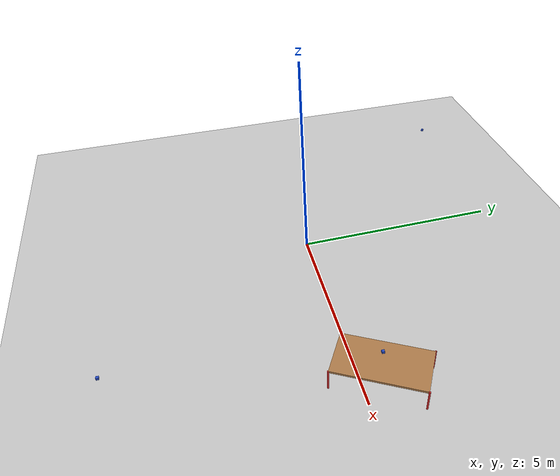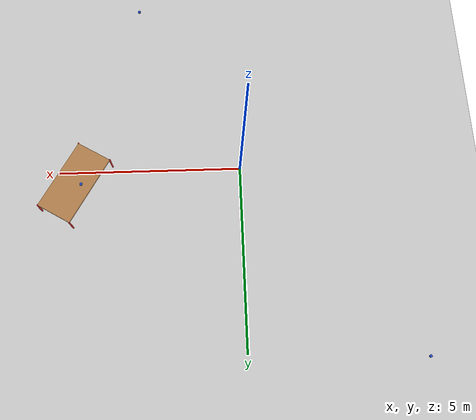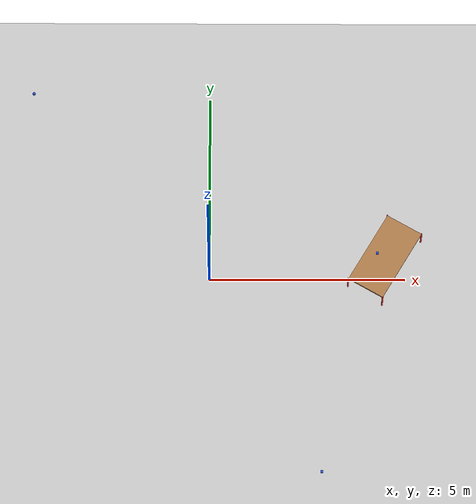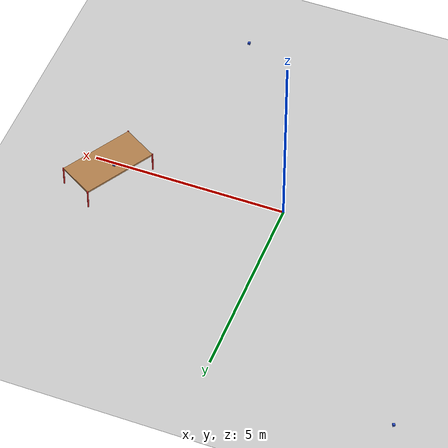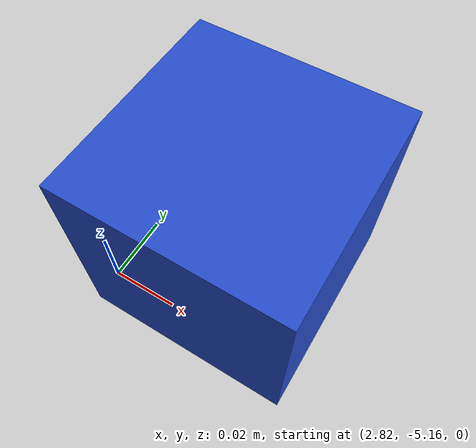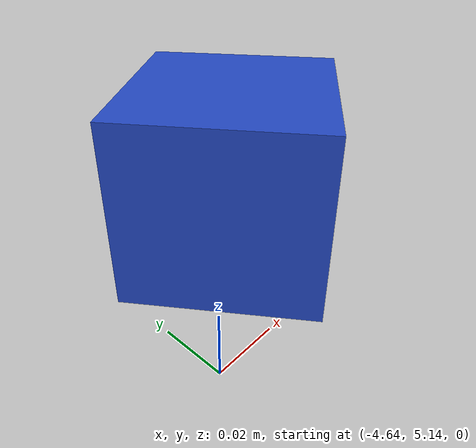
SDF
<sdf version="1.4">
 <world name="default">
  <model name="ground_plane">
   <static>1</static>
   <link name="link">
    <collision name="collision">
     <geometry><plane><normal>0 0 1</normal><size>100 100</size></plane></geometry>
     <surface><friction><ode><mu>100</mu><mu2>50</mu2></ode></friction></surface>
    </collision>
    <visual name="visual">
     <cast_shadows>0</cast_shadows>
     <geometry><plane><normal>0 0 1</normal><size>100 100</size></plane></geometry>
     <material>
      <script><uri>file://media/materials/scripts/gazebo.material</uri><name>Gazebo/Grey</name></script>
     </material>
    </visual>
    <velocity_decay><linear>0</linear><angular>0</angular></velocity_decay>
   </link>
  </model>
  <light name="sun" type="directional">
   <pose>0 0 10 0 -0 0</pose>
   <diffuse>0.8 0.8 0.8 1</diffuse>
   <specular>0.2 0.2 0.2 1</specular>
   <attenuation>
    <range>1000</range>
    <constant>0.9</constant>
    <linear>0.01</linear>
    <quadratic>0.001</quadratic>
   </attenuation>
   <direction>-0.5 0.1 -0.9</direction>
  </light>
  <model name="table1">
   <link name="table_top_link">
    <inertial>
     <pose>0 0 0.325 0 -0 0</pose>
     <mass>5</mass>
     <inertia><ixx>5.45</ixx><ixy>0</ixy><ixz>0</ixz><iyy>2.45</iyy><iyz>0</iyz><izz>6.04</izz></inertia>
    </inertial>
    <collision name="table_top_link_collision">
     <pose>0 0 0.525 0 -0 0</pose>
     <geometry><box><size>1 2 0.05</size></box></geometry>
     <surface>
      <contact><ode><kp>1e+06</kp><kd>1</kd></ode></contact>
      <friction><ode><mu>50</mu><mu2>50</mu2></ode></friction>
     </surface>
    </collision>
    <collision name="table_top_link_collision_leg1_link">
     <pose>0.5 1 0.275 0 -0 0</pose>
     <geometry><cylinder><length>0.55</length><radius>0.02</radius></cylinder></geometry>
     <surface>
      <contact><ode><kp>1e+06</kp><kd>1</kd></ode></contact>
      <friction><ode><mu>50</mu><mu2>50</mu2></ode></friction>
     </surface>
     <surface>
      <contact><ode><kp>1e+07</kp><kd>1</kd></ode></contact>
      <friction><ode><mu>1000</mu><mu2>1000</mu2></ode></friction>
     </surface>
    </collision>
    <collision name="table_top_link_collision_leg2_link">
     <pose>-0.5 1 0.275 0 -0 0</pose>
     <geometry><cylinder><length>0.55</length><radius>0.02</radius></cylinder></geometry>
     <surface>
      <contact><ode><kp>1e+06</kp><kd>1</kd></ode></contact>
      <friction><ode><mu>50</mu><mu2>50</mu2></ode></friction>
     </surface>
     <surface>
      <contact><ode><kp>1e+07</kp><kd>1</kd></ode></contact>
      <friction><ode><mu>1000</mu><mu2>1000</mu2></ode></friction>
     </surface>
    </collision>
    <collision name="table_top_link_collision_leg3_link">
     <pose>0.5 -1 0.275 0 -0 0</pose>
     <geometry><cylinder><length>0.55</length><radius>0.02</radius></cylinder></geometry>
     <surface>
      <contact><ode><kp>1e+06</kp><kd>1</kd></ode></contact>
      <friction><ode><mu>50</mu><mu2>50</mu2></ode></friction>
     </surface>
     <surface>
      <contact><ode><kp>1e+07</kp><kd>1</kd></ode></contact>
      <friction><ode><mu>1000</mu><mu2>1000</mu2></ode></friction>
     </surface>
    </collision>
    <collision name="table_top_link_collision_leg4_link">
     <pose>-0.5 -1 0.275 0 -0 0</pose>
     <geometry><cylinder><length>0.55</length><radius>0.02</radius></cylinder></geometry>
     <surface>
      <contact><ode><kp>1e+06</kp><kd>1</kd></ode></contact>
      <friction><ode><mu>50</mu><mu2>50</mu2></ode></friction>
     </surface>
     <surface>
      <contact><ode><kp>1e+07</kp><kd>1</kd></ode></contact>
      <friction><ode><mu>1000</mu><mu2>1000</mu2></ode></friction>
     </surface>
    </collision>
    <visual name="table_top_link_visual">
     <pose>0 0 0.525 0 -0 0</pose>
     <geometry><box><size>1 2 0.05</size></box></geometry>
     <material><script><name>Gazebo/Wood</name><uri>__default__</uri></script></material>
    </visual>
    <visual name="table_top_link_visual_leg1_link">
     <pose>0.5 1 0.275 0 -0 0</pose>
     <geometry><cylinder><length>0.55</length><radius>0.02</radius></cylinder></geometry>
     <material><script><name>Gazebo/Red</name><uri>__default__</uri></script></material>
    </visual>
    <visual name="table_top_link_visual_leg2_link">
     <pose>-0.5 1 0.275 0 -0 0</pose>
     <geometry><cylinder><length>0.55</length><radius>0.02</radius></cylinder></geometry>
     <material><script><name>Gazebo/Red</name><uri>__default__</uri></script></material>
    </visual>
    <visual name="table_top_link_visual_leg3_link">
     <pose>0.5 -1 0.275 0 -0 0</pose>
     <geometry><cylinder><length>0.55</length><radius>0.02</radius></cylinder></geometry>
     <material><script><name>Gazebo/Red</name><uri>__default__</uri></script></material>
    </visual>
    <visual name="table_top_link_visual_leg4_link">
     <pose>-0.5 -1 0.275 0 -0 0</pose>
     <geometry><cylinder><length>0.55</length><radius>0.02</radius></cylinder></geometry>
     <material><script><name>Gazebo/Red</name><uri>__default__</uri></script></material>
    </visual>
    <velocity_decay><linear>0</linear><angular>0</angular></velocity_decay>
    <velocity_decay><linear>0</linear><angular>0</angular></velocity_decay>
    <velocity_decay><linear>0</linear><angular>0</angular></velocity_decay>
    <velocity_decay><linear>0</linear><angular>0</angular></velocity_decay>
    <velocity_decay><linear>0</linear><angular>0</angular></velocity_decay>
    <self_collide>1</self_collide>
   </link>
   <static>1</static>
   <pose>4.47268 0.450644 0 0 0 -0.530326</pose>
  </model>
  <model name="demo_cube">
   <static>0</static>
   <link name="link">
    <inertial>
     <mass>0.25</mass>
     <inertia><ixx>0.001</ixx><ixy>0</ixy><ixz>0</ixz><iyy>0.001</iyy><iyz>0</iyz><izz>0.001</izz></inertia>
    </inertial>
    <collision name="collision">
     <geometry><box><size>0.06 0.06 0.06</size></box></geometry>
     <surface>
      <friction><ode><mu>30</mu><mu2>30</mu2></ode></friction>
      <contact><ode><kp>1e+06</kp><kd>100</kd><max_vel>1</max_vel><min_depth>0.002</min_depth></ode></contact>
     </surface>
    </collision>
    <visual name="visual">
     <geometry><box><size>0.06 0.06 0.06</size></box></geometry>
     <material>
      <script><uri>file://media/materials/scripts/gazebo.material</uri><name>Gazebo/Blue</name></script>
     </material>
    </visual>
    <velocity_decay><linear>0</linear><angular>0</angular></velocity_decay>
   </link>
   <pose>-4.60048 5.17253 0.027999 3.14159 -0 -0.955861</pose>
  </model>
  <physics type="ode">
   <max_step_size>0.001</max_step_size>
   <real_time_factor>1</real_time_factor>
   <real_time_update_rate>1000</real_time_update_rate>
   <gravity>0 0 -9.8</gravity>
  </physics>
  <scene><ambient>0.4 0.4 0.4 1</ambient><background>0.7 0.7 0.7 1</background><shadows>1</shadows></scene>
  <spherical_coordinates>
   <surface_model>EARTH_WGS84</surface_model>
   <latitude_deg>0</latitude_deg>
   <longitude_deg>0</longitude_deg>
   <elevation>0</elevation>
   <heading_deg>0</heading_deg>
  </spherical_coordinates>
  <model name="demo_cube_0">
   <static>0</static>
   <link name="link">
    <inertial>
     <mass>0.25</mass>
     <inertia><ixx>0.001</ixx><ixy>0</ixy><ixz>0</ixz><iyy>0.001</iyy><iyz>0</iyz><izz>0.001</izz></inertia>
    </inertial>
    <collision name="collision">
     <geometry><box><size>0.06 0.06 0.06</size></box></geometry>
     <surface>
      <friction><ode><mu>30</mu><mu2>30</mu2></ode></friction>
      <contact><ode><kp>1e+06</kp><kd>100</kd><max_vel>1</max_vel><min_depth>0.002</min_depth></ode></contact>
     </surface>
    </collision>
    <visual name="visual">
     <geometry><box><size>0.06 0.06 0.06</size></box></geometry>
     <material>
      <script><uri>file://media/materials/scripts/gazebo.material</uri><name>Gazebo/Blue</name></script>
     </material>
    </visual>
    <velocity_decay><linear>0</linear><angular>0</angular></velocity_decay>
   </link>
   <pose>2.85016 -5.13888 0.027999 0 -0 0</pose>
  </model>
  <model name="demo_cube_1">
   <static>0</static>
   <link name="link">
    <inertial>
     <mass>0.25</mass>
     <inertia><ixx>0.001</ixx><ixy>0</ixy><ixz>0</ixz><iyy>0.001</iyy><iyz>0</iyz><izz>0.001</izz></inertia>
    </inertial>
    <collision name="collision">
     <geometry><box><size>0.06 0.06 0.06</size></box></geometry>
     <surface>
      <friction><ode><mu>30</mu><mu2>30</mu2></ode></friction>
      <contact><ode><kp>1e+06</kp><kd>100</kd><max_vel>1</max_vel><min_depth>0.002</min_depth></ode></contact>
     </surface>
    </collision>
    <visual name="visual">
     <geometry><box><size>0.06 0.06 0.06</size></box></geometry>
     <material>
      <script><uri>file://media/materials/scripts/gazebo.material</uri><name>Gazebo/Blue</name></script>
     </material>
    </visual>
    <velocity_decay><linear>0</linear><angular>0</angular></velocity_decay>
   </link>
   <pose>4.27365 0.525795 0.577999 0 -0 0</pose>
  </model>
 </world>
</sdf>
